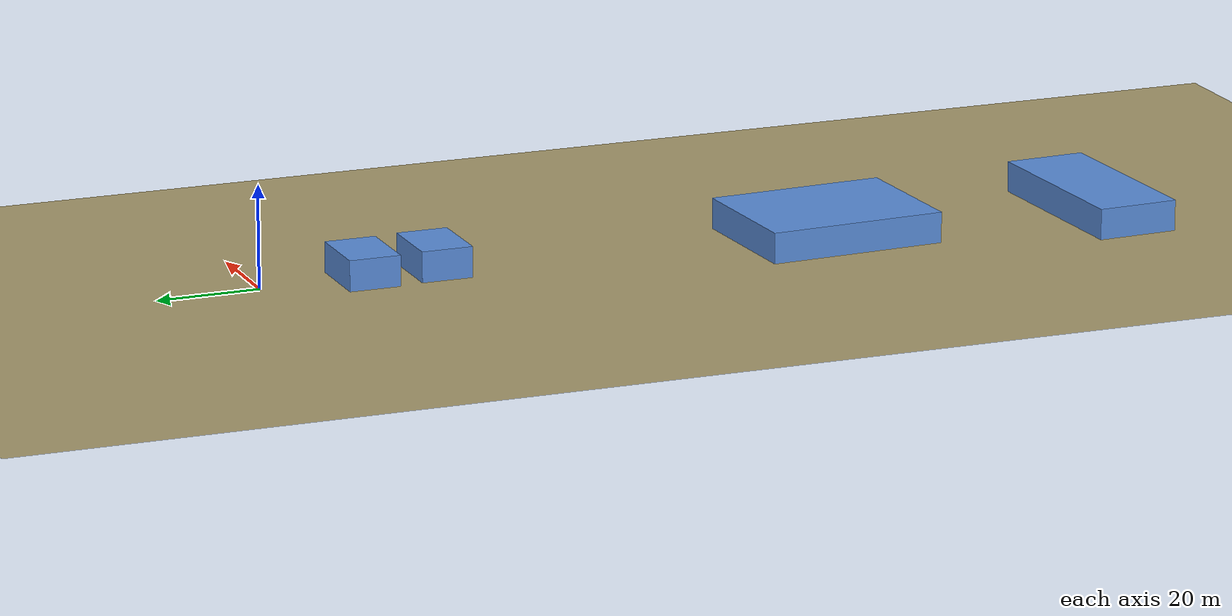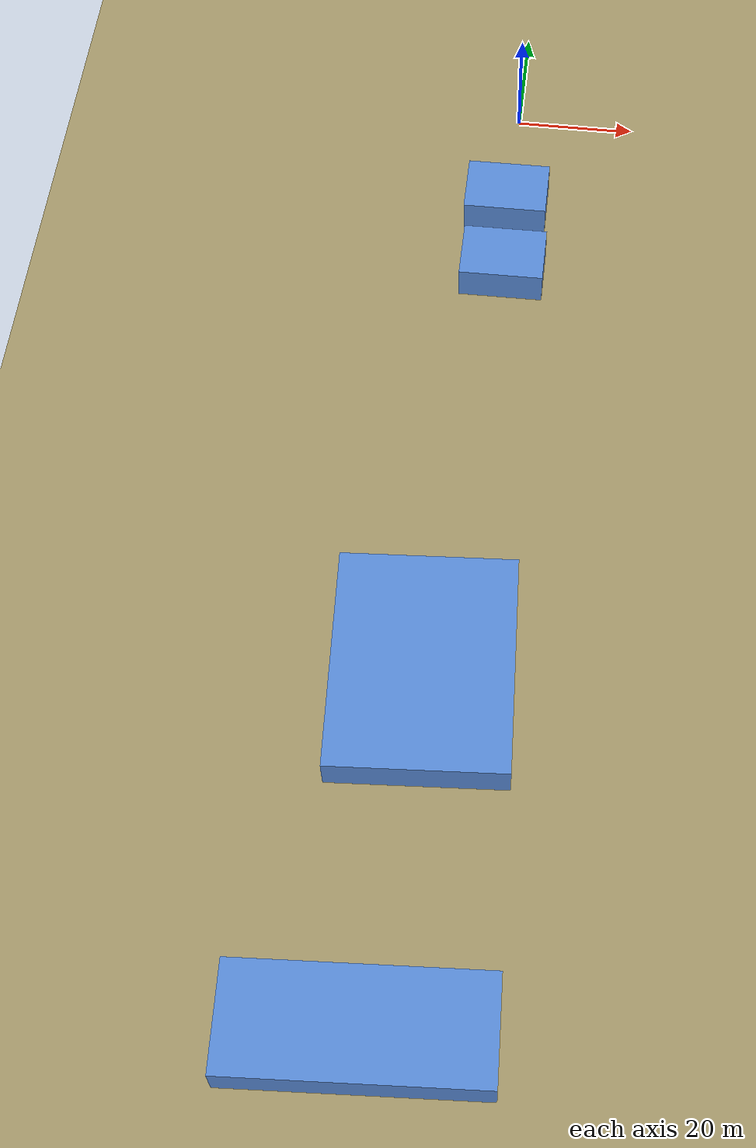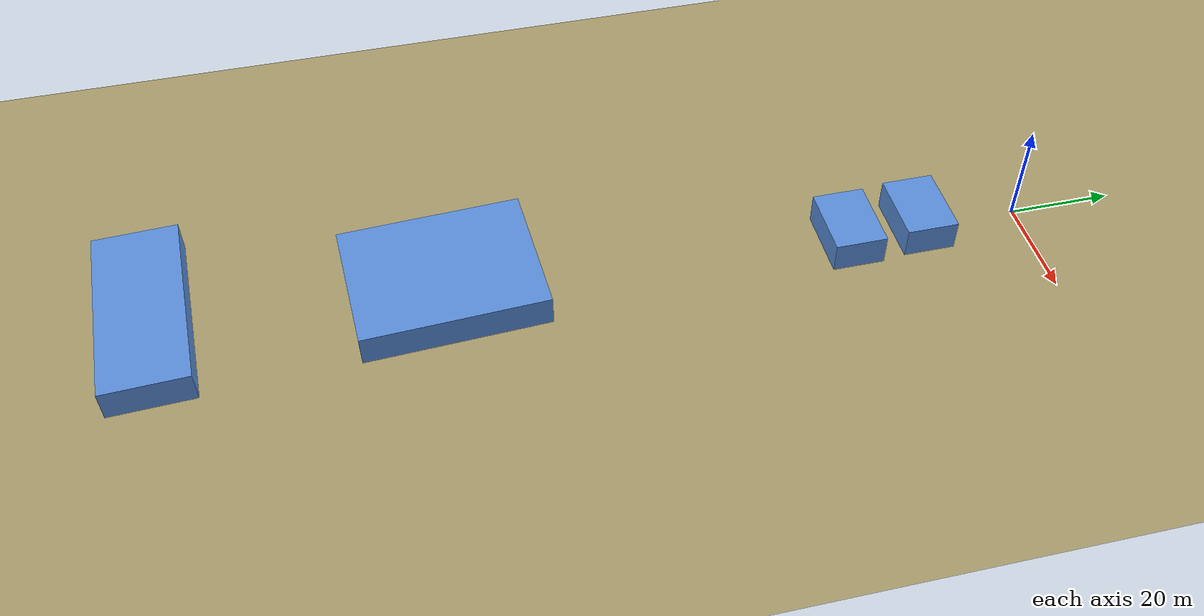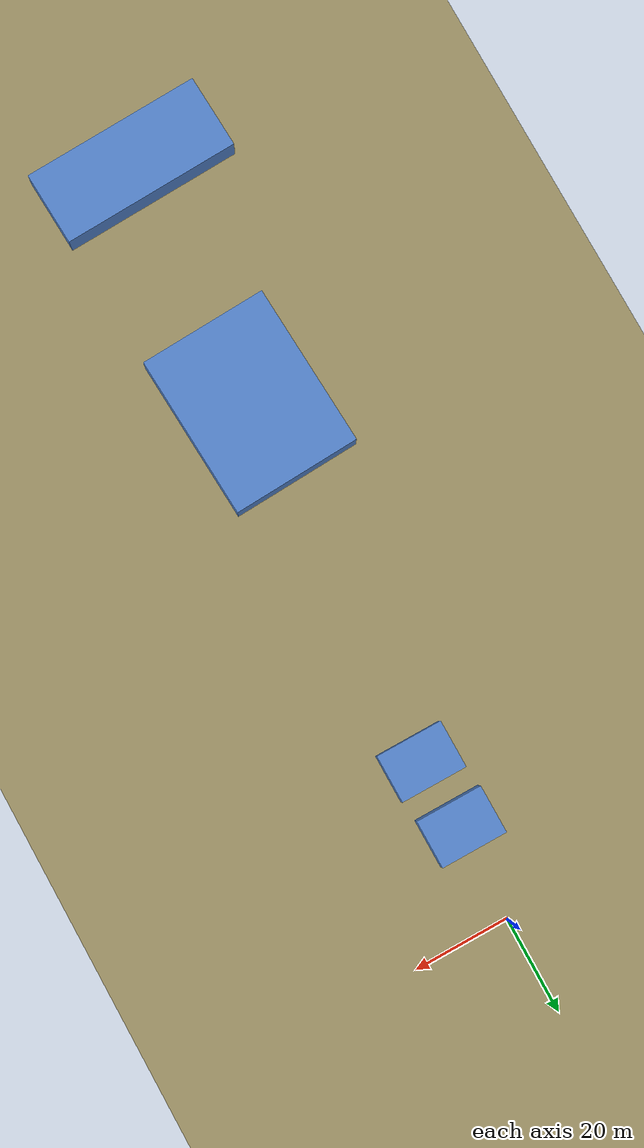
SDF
<sdf version="1.10">
 <world name="novation_city">
  <model name="ground_plane">
   <static>true</static>
   <link name="link">
    <collision name="collision">
     <geometry><plane><normal>0 0 1</normal><size>2000 2000</size></plane></geometry>
     <surface><friction><ode><mu>1.0</mu><mu2>1.0</mu2></ode></friction></surface>
    </collision>
    <visual name="visual">
     <geometry><plane><normal>0 0 1</normal><size>2000 2000</size></plane></geometry>
     <material><ambient>0.55 0.50 0.35 1</ambient><diffuse>0.65 0.60 0.42 1</diffuse></material>
    </visual>
   </link>
  </model>
  <model name="chase_cam">
   <static>true</static>
   <pose>-15 -12 6   0 0.35 0.7</pose>
   <link name="link">
    <sensor name="chase_camera" type="camera">
     <always_on>1</always_on>
     <update_rate>2</update_rate>
     <topic>world_cam/chase</topic>
     <gz_frame_id>world</gz_frame_id>
     <camera>
      <horizontal_fov>1.4</horizontal_fov>
      <image><width>960</width><height>540</height><format>R8G8B8</format></image>
      <clip><near>0.1</near><far>2000.0</far></clip>
     </camera>
    </sensor>
   </link>
  </model>
  <model name="bld_YAMAICHI_ELECTRONICS_TUNISIE_792">
   <static>true</static>
   <pose>-7.921 -165.640 3.000 0 0 -3.0932</pose>
   <link name="link">
    <collision name="c"><geometry><box><size>38.23 15.93 6.00</size></box></geometry></collision>
    <visual name="v">
     <geometry><box><size>38.23 15.93 6.00</size></box></geometry>
     <material><ambient>0.35 0.55 0.85 1</ambient><diffuse>0.35 0.55 0.85 1</diffuse></material>
    </visual>
   </link>
  </model>
  <model name="bld_DACT_DRAEXLMAIER_510">
   <static>true</static>
   <pose>-5.100 -111.559 3.000 0 0 1.6244</pose>
   <link name="link">
    <collision name="c"><geometry><box><size>35.03 27.34 6.00</size></box></geometry></collision>
    <visual name="v">
     <geometry><box><size>35.03 27.34 6.00</size></box></geometry>
     <material><ambient>0.35 0.55 0.85 1</ambient><diffuse>0.35 0.55 0.85 1</diffuse></material>
    </visual>
   </link>
  </model>
  <model name="bld_CATHARSIS_CONSULTING_7">
   <static>true</static>
   <pose>-0.072 -34.309 3.000 0 0 0.0000</pose>
   <link name="link">
    <collision name="c"><geometry><box><size>14.00 10.00 6.00</size></box></geometry></collision>
    <visual name="v">
     <geometry><box><size>14.00 10.00 6.00</size></box></geometry>
     <material><ambient>0.35 0.55 0.85 1</ambient><diffuse>0.35 0.55 0.85 1</diffuse></material>
    </visual>
   </link>
  </model>
  <model name="bld_VEO_Worldwide_Services_68">
   <static>true</static>
   <pose>-0.686 -19.882 3.000 0 0 0.0000</pose>
   <link name="link">
    <collision name="c"><geometry><box><size>14.00 10.00 6.00</size></box></geometry></collision>
    <visual name="v">
     <geometry><box><size>14.00 10.00 6.00</size></box></geometry>
     <material><ambient>0.35 0.55 0.85 1</ambient><diffuse>0.35 0.55 0.85 1</diffuse></material>
    </visual>
   </link>
  </model>
 </world>
</sdf>
